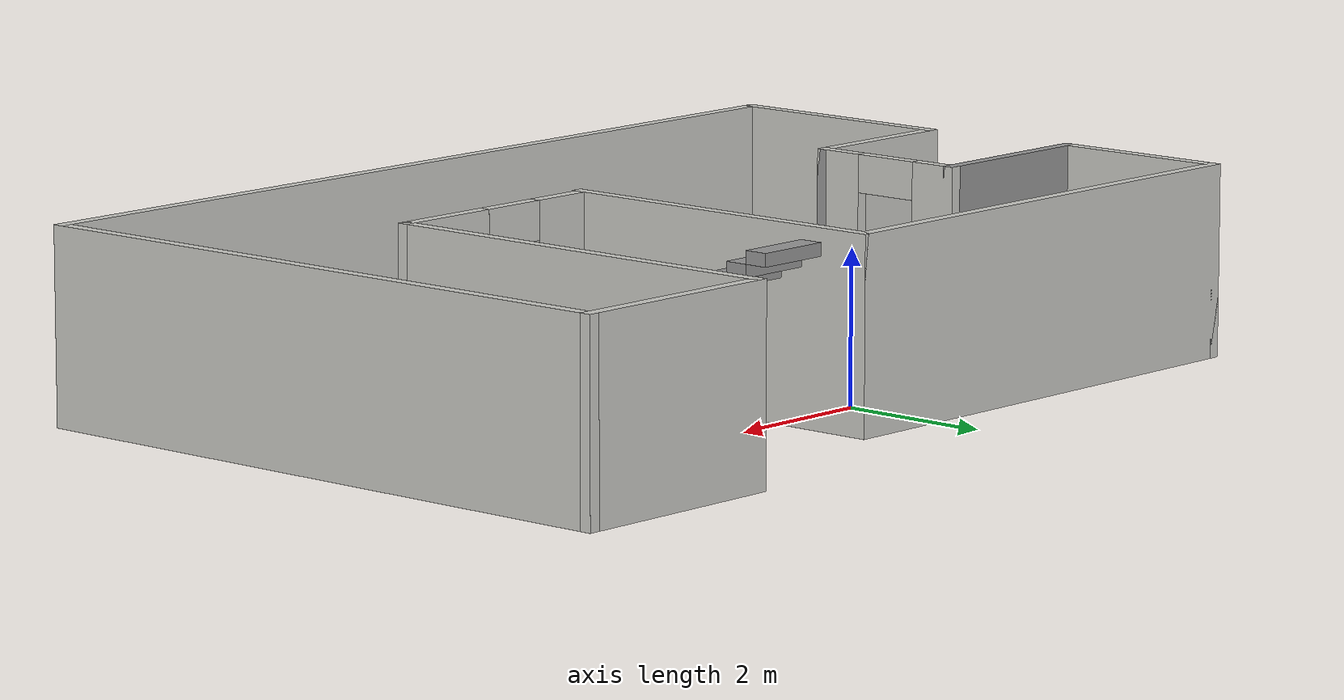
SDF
<?xml version='1.0'?>
<sdf version='1.6'>
  <model name='walls'>
    <pose frame=''>0.845 -1.98 0 0 -0 0</pose>
    <link name='Stairs_2'>
      <visual name='Stairs_2_Visual_0'>
        <pose frame=''>1.76697 -1.16574 0.083333 0 -0 -3.14159</pose>
        <geometry>
          <box>
            <size>1 0.307151 0.166667</size>
          </box>
        </geometry>
        <material>
          <script>
            <uri>file://media/materials/scripts/gazebo.material</uri>
            <name>Gazebo/Grey</name>
          </script>
          <ambient>1 1 1 1</ambient>
        </material>
      </visual>
      <collision name='Stairs_2_Collision_0'>
        <geometry>
          <box>
            <size>1 0.307151 0.166667</size>
          </box>
        </geometry>
        <pose frame=''>1.76697 -1.16574 0.083333 0 -0 -3.14159</pose>
      </collision>
      <visual name='Stairs_2_Visual_1'>
        <pose frame=''>1.76697 -0.858593 0.25 0 -0 -3.14159</pose>
        <geometry>
          <box>
            <size>1 0.307151 0.166667</size>
          </box>
        </geometry>
        <material>
          <script>
            <uri>file://media/materials/scripts/gazebo.material</uri>
            <name>Gazebo/Grey</name>
          </script>
          <ambient>1 1 1 1</ambient>
        </material>
      </visual>
      <collision name='Stairs_2_Collision_1'>
        <geometry>
          <box>
            <size>1 0.307151 0.166667</size>
          </box>
        </geometry>
        <pose frame=''>1.76697 -0.858593 0.25 0 -0 -3.14159</pose>
      </collision>
      <visual name='Stairs_2_Visual_2'>
        <pose frame=''>1.76697 -0.551442 0.416667 0 -0 -3.14159</pose>
        <geometry>
          <box>
            <size>1 0.307151 0.166667</size>
          </box>
        </geometry>
        <material>
          <script>
            <uri>file://media/materials/scripts/gazebo.material</uri>
            <name>Gazebo/Grey</name>
          </script>
          <ambient>1 1 1 1</ambient>
        </material>
      </visual>
      <collision name='Stairs_2_Collision_2'>
        <geometry>
          <box>
            <size>1 0.307151 0.166667</size>
          </box>
        </geometry>
        <pose frame=''>1.76697 -0.551442 0.416667 0 -0 -3.14159</pose>
      </collision>
      <visual name='Stairs_2_Visual_3'>
        <pose frame=''>1.76697 -0.244291 0.583333 0 -0 -3.14159</pose>
        <geometry>
          <box>
            <size>1 0.307151 0.166667</size>
          </box>
        </geometry>
        <material>
          <script>
            <uri>file://media/materials/scripts/gazebo.material</uri>
            <name>Gazebo/Grey</name>
          </script>
          <ambient>1 1 1 1</ambient>
        </material>
      </visual>
      <collision name='Stairs_2_Collision_3'>
        <geometry>
          <box>
            <size>1 0.307151 0.166667</size>
          </box>
        </geometry>
        <pose frame=''>1.76697 -0.244291 0.583333 0 -0 -3.14159</pose>
      </collision>
      <visual name='Stairs_2_Visual_4'>
        <pose frame=''>1.76697 0.06286 0.75 0 -0 -3.14159</pose>
        <geometry>
          <box>
            <size>1 0.307151 0.166667</size>
          </box>
        </geometry>
        <material>
          <script>
            <uri>file://media/materials/scripts/gazebo.material</uri>
            <name>Gazebo/Grey</name>
          </script>
          <ambient>1 1 1 1</ambient>
        </material>
      </visual>
      <collision name='Stairs_2_Collision_4'>
        <geometry>
          <box>
            <size>1 0.307151 0.166667</size>
          </box>
        </geometry>
        <pose frame=''>1.76697 0.06286 0.75 0 -0 -3.14159</pose>
      </collision>
      <visual name='Stairs_2_Visual_5'>
        <pose frame=''>1.76697 0.370011 0.916667 0 -0 -3.14159</pose>
        <geometry>
          <box>
            <size>1 0.307151 0.166667</size>
          </box>
        </geometry>
        <material>
          <script>
            <uri>file://media/materials/scripts/gazebo.material</uri>
            <name>Gazebo/Grey</name>
          </script>
          <ambient>1 1 1 1</ambient>
        </material>
      </visual>
      <collision name='Stairs_2_Collision_5'>
        <geometry>
          <box>
            <size>1 0.307151 0.166667</size>
          </box>
        </geometry>
        <pose frame=''>1.76697 0.370011 0.916667 0 -0 -3.14159</pose>
      </collision>
      <visual name='Stairs_2_Visual_6'>
        <pose frame=''>1.76697 0.677162 1.08333 0 -0 -3.14159</pose>
        <geometry>
          <box>
            <size>1 0.307151 0.166667</size>
          </box>
        </geometry>
        <material>
          <script>
            <uri>file://media/materials/scripts/gazebo.material</uri>
            <name>Gazebo/Grey</name>
          </script>
          <ambient>1 1 1 1</ambient>
        </material>
      </visual>
      <collision name='Stairs_2_Collision_6'>
        <geometry>
          <box>
            <size>1 0.307151 0.166667</size>
          </box>
        </geometry>
        <pose frame=''>1.76697 0.677162 1.08333 0 -0 -3.14159</pose>
      </collision>
      <visual name='Stairs_2_Visual_7'>
        <pose frame=''>1.76697 0.984313 1.25 0 -0 -3.14159</pose>
        <geometry>
          <box>
            <size>1 0.307151 0.166667</size>
          </box>
        </geometry>
        <material>
          <script>
            <uri>file://media/materials/scripts/gazebo.material</uri>
            <name>Gazebo/Grey</name>
          </script>
          <ambient>1 1 1 1</ambient>
        </material>
      </visual>
      <collision name='Stairs_2_Collision_7'>
        <geometry>
          <box>
            <size>1 0.307151 0.166667</size>
          </box>
        </geometry>
        <pose frame=''>1.76697 0.984313 1.25 0 -0 -3.14159</pose>
      </collision>
      <visual name='Stairs_2_Visual_8'>
        <pose frame=''>1.76697 1.29146 1.41667 0 -0 -3.14159</pose>
        <geometry>
          <box>
            <size>1 0.307151 0.166667</size>
          </box>
        </geometry>
        <material>
          <script>
            <uri>file://media/materials/scripts/gazebo.material</uri>
            <name>Gazebo/Grey</name>
          </script>
          <ambient>1 1 1 1</ambient>
        </material>
      </visual>
      <collision name='Stairs_2_Collision_8'>
        <geometry>
          <box>
            <size>1 0.307151 0.166667</size>
          </box>
        </geometry>
        <pose frame=''>1.76697 1.29146 1.41667 0 -0 -3.14159</pose>
      </collision>
      <visual name='Stairs_2_Visual_9'>
        <pose frame=''>1.76697 1.59861 1.58333 0 -0 -3.14159</pose>
        <geometry>
          <box>
            <size>1 0.307151 0.166667</size>
          </box>
        </geometry>
        <material>
          <script>
            <uri>file://media/materials/scripts/gazebo.material</uri>
            <name>Gazebo/Grey</name>
          </script>
          <ambient>1 1 1 1</ambient>
        </material>
      </visual>
      <collision name='Stairs_2_Collision_9'>
        <geometry>
          <box>
            <size>1 0.307151 0.166667</size>
          </box>
        </geometry>
        <pose frame=''>1.76697 1.59861 1.58333 0 -0 -3.14159</pose>
      </collision>
      <visual name='Stairs_2_Visual_10'>
        <pose frame=''>1.76697 1.90577 1.75 0 -0 -3.14159</pose>
        <geometry>
          <box>
            <size>1 0.307151 0.166667</size>
          </box>
        </geometry>
        <material>
          <script>
            <uri>file://media/materials/scripts/gazebo.material</uri>
            <name>Gazebo/Grey</name>
          </script>
          <ambient>1 1 1 1</ambient>
        </material>
      </visual>
      <collision name='Stairs_2_Collision_10'>
        <geometry>
          <box>
            <size>1 0.307151 0.166667</size>
          </box>
        </geometry>
        <pose frame=''>1.76697 1.90577 1.75 0 -0 -3.14159</pose>
      </collision>
      <visual name='Stairs_2_Visual_11'>
        <pose frame=''>1.76697 2.21292 1.91667 0 -0 -3.14159</pose>
        <geometry>
          <box>
            <size>1 0.307151 0.166667</size>
          </box>
        </geometry>
        <material>
          <script>
            <uri>file://media/materials/scripts/gazebo.material</uri>
            <name>Gazebo/Grey</name>
          </script>
          <ambient>1 1 1 1</ambient>
        </material>
      </visual>
      <collision name='Stairs_2_Collision_11'>
        <geometry>
          <box>
            <size>1 0.307151 0.166667</size>
          </box>
        </geometry>
        <pose frame=''>1.76697 2.21292 1.91667 0 -0 -3.14159</pose>
      </collision>
      <visual name='Stairs_2_Visual_12'>
        <pose frame=''>1.76697 2.52007 2.08333 0 -0 -3.14159</pose>
        <geometry>
          <box>
            <size>1 0.307151 0.166667</size>
          </box>
        </geometry>
        <material>
          <script>
            <uri>file://media/materials/scripts/gazebo.material</uri>
            <name>Gazebo/Grey</name>
          </script>
          <ambient>1 1 1 1</ambient>
        </material>
      </visual>
      <collision name='Stairs_2_Collision_12'>
        <geometry>
          <box>
            <size>1 0.307151 0.166667</size>
          </box>
        </geometry>
        <pose frame=''>1.76697 2.52007 2.08333 0 -0 -3.14159</pose>
      </collision>
      <visual name='Stairs_2_Visual_13'>
        <pose frame=''>1.76697 2.82722 2.25 0 -0 -3.14159</pose>
        <geometry>
          <box>
            <size>1 0.307151 0.166667</size>
          </box>
        </geometry>
        <material>
          <script>
            <uri>file://media/materials/scripts/gazebo.material</uri>
            <name>Gazebo/Grey</name>
          </script>
          <ambient>1 1 1 1</ambient>
        </material>
      </visual>
      <collision name='Stairs_2_Collision_13'>
        <geometry>
          <box>
            <size>1 0.307151 0.166667</size>
          </box>
        </geometry>
        <pose frame=''>1.76697 2.82722 2.25 0 -0 -3.14159</pose>
      </collision>
      <visual name='Stairs_2_Visual_14'>
        <pose frame=''>1.76697 3.13437 2.41667 0 -0 -3.14159</pose>
        <geometry>
          <box>
            <size>1 0.307151 0.166667</size>
          </box>
        </geometry>
        <material>
          <script>
            <uri>file://media/materials/scripts/gazebo.material</uri>
            <name>Gazebo/Grey</name>
          </script>
          <ambient>1 1 1 1</ambient>
        </material>
      </visual>
      <collision name='Stairs_2_Collision_14'>
        <geometry>
          <box>
            <size>1 0.307151 0.166667</size>
          </box>
        </geometry>
        <pose frame=''>1.76697 3.13437 2.41667 0 -0 -3.14159</pose>
      </collision>
    </link>
    <link name='Wall_0'>
      <pose frame=''>-4.075 -0.15 0 0 0 -1.5708</pose>
      <visual name='Wall_0_Visual_0'>
        <pose frame=''>-0.793499 0 1.25 0 -0 0</pose>
        <geometry>
          <box>
            <size>0.663003 0.15 2.5</size>
          </box>
        </geometry>
        <material>
          <script>
            <uri>file://media/materials/scripts/gazebo.material</uri>
            <name>Gazebo/CeilingTiled</name>
          </script>
          <ambient>1 1 1 1</ambient>
        </material>
      </visual>
      <collision name='Wall_0_Collision_0'>
        <geometry>
          <box>
            <size>0.663003 0.15 2.5</size>
          </box>
        </geometry>
        <pose frame=''>-0.793499 0 1.25 0 -0 0</pose>
      </collision>
      <visual name='Wall_0_Visual_1'>
        <pose frame=''>0.781501 0 1.25 0 -0 0</pose>
        <geometry>
          <box>
            <size>0.686997 0.15 2.5</size>
          </box>
        </geometry>
        <material>
          <script>
            <uri>file://media/materials/scripts/gazebo.material</uri>
            <name>Gazebo/CeilingTiled</name>
          </script>
          <ambient>1 1 1 1</ambient>
        </material>
      </visual>
      <collision name='Wall_0_Collision_1'>
        <geometry>
          <box>
            <size>0.686997 0.15 2.5</size>
          </box>
        </geometry>
        <pose frame=''>0.781501 0 1.25 0 -0 0</pose>
      </collision>
      <visual name='Wall_0_Visual_2'>
        <pose frame=''>-0.011997 0 2.25 0 -0 0</pose>
        <geometry>
          <box>
            <size>0.9 0.15 0.5</size>
          </box>
        </geometry>
        <material>
          <script>
            <uri>file://media/materials/scripts/gazebo.material</uri>
            <name>Gazebo/CeilingTiled</name>
          </script>
          <ambient>1 1 1 1</ambient>
        </material>
      </visual>
      <collision name='Wall_0_Collision_2'>
        <geometry>
          <box>
            <size>0.9 0.15 0.5</size>
          </box>
        </geometry>
        <pose frame=''>-0.011997 0 2.25 0 -0 0</pose>
      </collision>
    </link>
    <link name='Wall_1'>
      <collision name='Wall_1_Collision'>
        <geometry>
          <box>
            <size>0.15 0.15 2.5</size>
          </box>
        </geometry>
        <pose frame=''>0 0 1.25 0 -0 0</pose>
      </collision>
      <visual name='Wall_1_Visual'>
        <pose frame=''>0 0 1.25 0 -0 0</pose>
        <geometry>
          <box>
            <size>0.15 0.15 2.5</size>
          </box>
        </geometry>
        <material>
          <script>
            <uri>file://media/materials/scripts/gazebo.material</uri>
            <name>Gazebo/Grey</name>
          </script>
          <ambient>1 1 1 1</ambient>
        </material>
      </visual>
      <pose frame=''>-4.075 -1.2 0 0 -0 0</pose>
    </link>
    <link name='Wall_15'>
      <collision name='Wall_15_Collision'>
        <geometry>
          <box>
            <size>2.5 0.15 2.5</size>
          </box>
        </geometry>
        <pose frame=''>0 0 1.25 0 -0 0</pose>
      </collision>
      <visual name='Wall_15_Visual'>
        <pose frame=''>0 0 1.25 0 -0 0</pose>
        <geometry>
          <box>
            <size>2.5 0.15 2.5</size>
          </box>
        </geometry>
        <material>
          <script>
            <uri>file://media/materials/scripts/gazebo.material</uri>
            <name>Gazebo/Grey</name>
          </script>
          <ambient>1 1 1 1</ambient>
        </material>
      </visual>
      <pose frame=''>-5.25 0.9 0 0 -0 3.14159</pose>
    </link>
    <link name='Wall_16'>
      <collision name='Wall_16_Collision'>
        <geometry>
          <box>
            <size>2.5 0.15 2.5</size>
          </box>
        </geometry>
        <pose frame=''>0 0 1.25 0 -0 0</pose>
      </collision>
      <visual name='Wall_16_Visual'>
        <pose frame=''>0 0 1.25 0 -0 0</pose>
        <geometry>
          <box>
            <size>2.5 0.15 2.5</size>
          </box>
        </geometry>
        <material>
          <script>
            <uri>file://media/materials/scripts/gazebo.material</uri>
            <name>Gazebo/CeilingTiled</name>
          </script>
          <ambient>1 1 1 1</ambient>
        </material>
      </visual>
      <pose frame=''>-6.425 2.075 0 0 -0 1.5708</pose>
    </link>
    <link name='Wall_2'>
      <collision name='Wall_2_Collision'>
        <geometry>
          <box>
            <size>2.25 0.15 2.5</size>
          </box>
        </geometry>
        <pose frame=''>0 0 1.25 0 -0 0</pose>
      </collision>
      <visual name='Wall_2_Visual'>
        <pose frame=''>0 0 1.25 0 -0 0</pose>
        <geometry>
          <box>
            <size>2.25 0.15 2.5</size>
          </box>
        </geometry>
        <material>
          <script>
            <uri>file://media/materials/scripts/gazebo.material</uri>
            <name>Gazebo/CeilingTiled</name>
          </script>
          <ambient>1 1 1 1</ambient>
        </material>
      </visual>
      <pose frame=''>-5.125 -1.2 0 0 -0 3.14159</pose>
    </link>
    <link name='Wall_23'>
      <collision name='Wall_23_Collision'>
        <geometry>
          <box>
            <size>7 0.15 2.5</size>
          </box>
        </geometry>
        <pose frame=''>0 0 1.25 0 -0 0</pose>
      </collision>
      <visual name='Wall_23_Visual'>
        <pose frame=''>0 0 1.25 0 -0 0</pose>
        <geometry>
          <box>
            <size>7 0.15 2.5</size>
          </box>
        </geometry>
        <material>
          <script>
            <uri>file://media/materials/scripts/gazebo.material</uri>
            <name>Gazebo/CeilingTiled</name>
          </script>
          <ambient>1 1 1 1</ambient>
        </material>
      </visual>
      <pose frame=''>-3 3.25 0 0 -0 0</pose>
    </link>
    <link name='Wall_25'>
      <collision name='Wall_25_Collision'>
        <geometry>
          <box>
            <size>4.75 0.15 2.5</size>
          </box>
        </geometry>
        <pose frame=''>0 0 1.25 0 -0 0</pose>
      </collision>
      <visual name='Wall_25_Visual'>
        <pose frame=''>0 0 1.25 0 -0 0</pose>
        <geometry>
          <box>
            <size>4.75 0.15 2.5</size>
          </box>
        </geometry>
        <material>
          <script>
            <uri>file://media/materials/scripts/gazebo.material</uri>
            <name>Gazebo/CeilingTiled</name>
          </script>
          <ambient>1 1 1 1</ambient>
        </material>
      </visual>
      <pose frame=''>0.425 0.95 0 0 0 -1.5708</pose>
    </link>
    <link name='Wall_3'>
      <collision name='Wall_3_Collision'>
        <geometry>
          <box>
            <size>3.25 0.15 2.5</size>
          </box>
        </geometry>
        <pose frame=''>0 0 1.25 0 -0 0</pose>
      </collision>
      <visual name='Wall_3_Visual'>
        <pose frame=''>0 0 1.25 0 -0 0</pose>
        <geometry>
          <box>
            <size>3.25 0.15 2.5</size>
          </box>
        </geometry>
        <material>
          <script>
            <uri>file://media/materials/scripts/gazebo.material</uri>
            <name>Gazebo/CeilingTiled</name>
          </script>
          <ambient>1 1 1 1</ambient>
        </material>
      </visual>
      <pose frame=''>-6.175 -2.75 0 0 0 -1.5708</pose>
    </link>
    <link name='Wall_4'>
      <collision name='Wall_4_Collision'>
        <geometry>
          <box>
            <size>12.75 0.15 2.5</size>
          </box>
        </geometry>
        <pose frame=''>0 0 1.25 0 -0 0</pose>
      </collision>
      <visual name='Wall_4_Visual'>
        <pose frame=''>0 0 1.25 0 -0 0</pose>
        <geometry>
          <box>
            <size>12.75 0.15 2.5</size>
          </box>
        </geometry>
        <material>
          <script>
            <uri>file://media/materials/scripts/gazebo.material</uri>
            <name>Gazebo/CeilingTiled</name>
          </script>
          <ambient>1 1 1 1</ambient>
        </material>
      </visual>
      <pose frame=''>0.125 -4.3 0 0 -0 0</pose>
    </link>
    <link name='Wall_5'>
      <collision name='Wall_5_Collision'>
        <geometry>
          <box>
            <size>8.75 0.15 2.5</size>
          </box>
        </geometry>
        <pose frame=''>0 0 1.25 0 -0 0</pose>
      </collision>
      <visual name='Wall_5_Visual'>
        <pose frame=''>0 0 1.25 0 -0 0</pose>
        <geometry>
          <box>
            <size>8.75 0.15 2.5</size>
          </box>
        </geometry>
        <material>
          <script>
            <uri>file://media/materials/scripts/gazebo.material</uri>
            <name>Gazebo/CeilingTiled</name>
          </script>
          <ambient>1 1 1 1</ambient>
        </material>
      </visual>
      <pose frame=''>6.425 0 0 0 -0 1.5708</pose>
    </link>
    <link name='Wall_6'>
      <collision name='Wall_6_Collision'>
        <geometry>
          <box>
            <size>3 0.15 2.5</size>
          </box>
        </geometry>
        <pose frame=''>0 0 1.25 0 -0 0</pose>
      </collision>
      <visual name='Wall_6_Visual'>
        <pose frame=''>0 0 1.25 0 -0 0</pose>
        <geometry>
          <box>
            <size>3 0.15 2.5</size>
          </box>
        </geometry>
        <material>
          <script>
            <uri>file://media/materials/scripts/gazebo.material</uri>
            <name>Gazebo/CeilingTiled</name>
          </script>
          <ambient>1 1 1 1</ambient>
        </material>
      </visual>
      <pose frame=''>5 4.3 0 0 -0 3.14159</pose>
    </link>
    <link name='Wall_7'>
      <collision name='Wall_7_Collision'>
        <geometry>
          <box>
            <size>5.75 0.15 2.5</size>
          </box>
        </geometry>
        <pose frame=''>0 0 1.25 0 -0 0</pose>
      </collision>
      <visual name='Wall_7_Visual'>
        <pose frame=''>0 0 1.25 0 -0 0</pose>
        <geometry>
          <box>
            <size>5.75 0.15 2.5</size>
          </box>
        </geometry>
        <material>
          <script>
            <uri>file://media/materials/scripts/gazebo.material</uri>
            <name>Gazebo/CeilingTiled</name>
          </script>
          <ambient>1 1 1 1</ambient>
        </material>
      </visual>
      <pose frame=''>3.575 1.5 0 0 0 -1.5708</pose>
    </link>
    <link name='Wall_8'>
      <pose frame=''>2.025 -1.3 0 0 -0 3.14159</pose>
      <visual name='Wall_8_Visual_0'>
        <pose frame=''>-0.906772 0 1.25 0 -0 0</pose>
        <geometry>
          <box>
            <size>1.43646 0.15 2.5</size>
          </box>
        </geometry>
        <material>
          <script>
            <uri>file://media/materials/scripts/gazebo.material</uri>
            <name>Gazebo/CeilingTiled</name>
          </script>
          <ambient>1 1 1 1</ambient>
        </material>
      </visual>
      <collision name='Wall_8_Collision_0'>
        <geometry>
          <box>
            <size>1.43646 0.15 2.5</size>
          </box>
        </geometry>
        <pose frame=''>-0.906772 0 1.25 0 -0 0</pose>
      </collision>
      <visual name='Wall_8_Visual_1'>
        <pose frame=''>1.16823 0 1.25 0 -0 0</pose>
        <geometry>
          <box>
            <size>0.913544 0.15 2.5</size>
          </box>
        </geometry>
        <material>
          <script>
            <uri>file://media/materials/scripts/gazebo.material</uri>
            <name>Gazebo/CeilingTiled</name>
          </script>
          <ambient>1 1 1 1</ambient>
        </material>
      </visual>
      <collision name='Wall_8_Collision_1'>
        <geometry>
          <box>
            <size>0.913544 0.15 2.5</size>
          </box>
        </geometry>
        <pose frame=''>1.16823 0 1.25 0 -0 0</pose>
      </collision>
      <visual name='Wall_8_Visual_2'>
        <pose frame=''>0.261456 0 2.25 0 -0 0</pose>
        <geometry>
          <box>
            <size>0.9 0.15 0.5</size>
          </box>
        </geometry>
        <material>
          <script>
            <uri>file://media/materials/scripts/gazebo.material</uri>
            <name>Gazebo/CeilingTiled</name>
          </script>
          <ambient>1 1 1 1</ambient>
        </material>
      </visual>
      <collision name='Wall_8_Collision_2'>
        <geometry>
          <box>
            <size>0.9 0.15 0.5</size>
          </box>
        </geometry>
        <pose frame=''>0.261456 0 2.25 0 -0 0</pose>
      </collision>
    </link>
    <static>1</static>
  </model>
</sdf>
